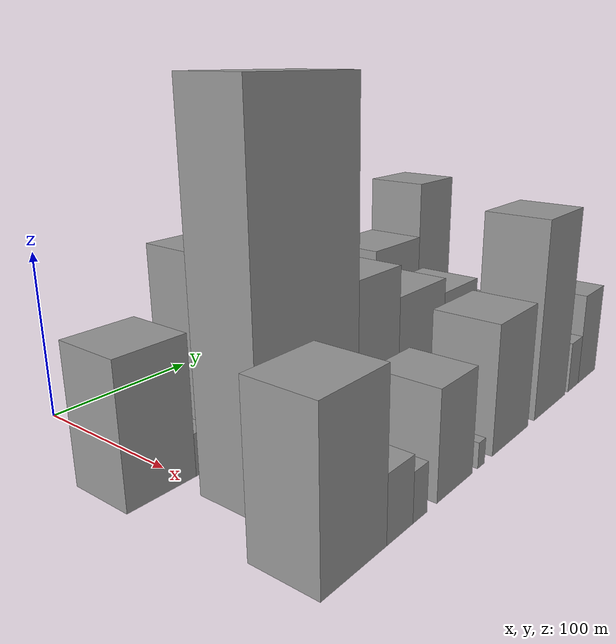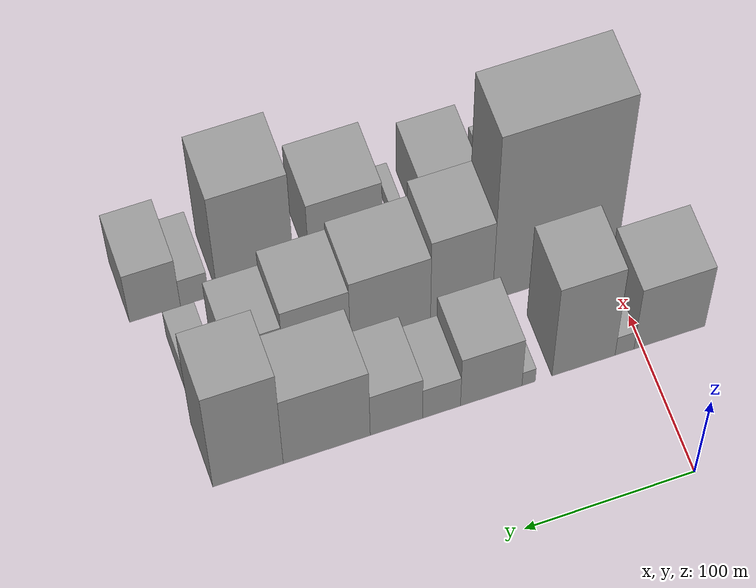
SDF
<sdf version="1.6">
 <world name="default">
  <model name="building_14">
   <static>1</static>
   <pose>100.0000 -16.3859 0 0.000000 0.000000 0.000000</pose>
   <link name="link">
    <pose>0 0 39.00 0 0 0</pose>
    <collision name="collision"><geometry><box><size>40.0000 42.8367 78.0000</size></box></geometry></collision>
    <visual name="visual">
     <cast_shadows>0</cast_shadows>
     <geometry><box><size>40.0000 42.8367 78.0000</size></box></geometry>
     <material>
      <script>
       <uri>model://grey_wall/materials/scripts</uri>
       <uri>model://grey_wall/materials/textures</uri>
       <name>vrc/grey_wall</name>
      </script>
     </material>
    </visual>
   </link>
  </model>
  <model name="building_15">
   <static>1</static>
   <pose>100.0000 10.6982 0 0.000000 0.000000 0.000000</pose>
   <link name="link">
    <pose>0 0 12.00 0 0 0</pose>
    <collision name="collision"><geometry><box><size>40.0000 11.3315 24.0000</size></box></geometry></collision>
    <visual name="visual">
     <cast_shadows>0</cast_shadows>
     <geometry><box><size>40.0000 11.3315 24.0000</size></box></geometry>
     <material>
      <script>
       <uri>model://grey_wall/materials/scripts</uri>
       <uri>model://grey_wall/materials/textures</uri>
       <name>vrc/grey_wall</name>
      </script>
     </material>
    </visual>
   </link>
  </model>
  <model name="building_16">
   <static>1</static>
   <pose>100.0000 35.2625 0 0.000000 0.000000 0.000000</pose>
   <link name="link">
    <pose>0 0 57.00 0 0 0</pose>
    <collision name="collision"><geometry><box><size>40.0000 37.7971 114.0000</size></box></geometry></collision>
    <visual name="visual">
     <cast_shadows>0</cast_shadows>
     <geometry><box><size>40.0000 37.7971 114.0000</size></box></geometry>
     <material>
      <script>
       <uri>model://grey_wall/materials/scripts</uri>
       <uri>model://grey_wall/materials/textures</uri>
       <name>vrc/grey_wall</name>
      </script>
     </material>
    </visual>
   </link>
  </model>
  <model name="building_17">
   <static>1</static>
   <pose>100.0000 68.1284 0 0.000000 0.000000 0.000000</pose>
   <link name="link">
    <pose>0 0 9.00 0 0 0</pose>
    <collision name="collision"><geometry><box><size>40.0000 7.9346 18.0000</size></box></geometry></collision>
    <visual name="visual">
     <cast_shadows>0</cast_shadows>
     <geometry><box><size>40.0000 7.9346 18.0000</size></box></geometry>
     <material>
      <script>
       <uri>model://grey_wall/materials/scripts</uri>
       <uri>model://grey_wall/materials/textures</uri>
       <name>vrc/grey_wall</name>
      </script>
     </material>
    </visual>
   </link>
  </model>
  <model name="building_18">
   <static>1</static>
   <pose>100.0000 90.3231 0 0.000000 0.000000 0.000000</pose>
   <link name="link">
    <pose>0 0 31.50 0 0 0</pose>
    <collision name="collision"><geometry><box><size>40.0000 36.4548 63.0000</size></box></geometry></collision>
    <visual name="visual">
     <cast_shadows>0</cast_shadows>
     <geometry><box><size>40.0000 36.4548 63.0000</size></box></geometry>
     <material>
      <script>
       <uri>model://grey_wall/materials/scripts</uri>
       <uri>model://grey_wall/materials/textures</uri>
       <name>vrc/grey_wall</name>
      </script>
     </material>
    </visual>
   </link>
  </model>
  <model name="building_19">
   <static>1</static>
   <pose>100.0000 119.7356 0 0.000000 0.000000 0.000000</pose>
   <link name="link">
    <pose>0 0 19.50 0 0 0</pose>
    <collision name="collision"><geometry><box><size>40.0000 22.3701 39.0000</size></box></geometry></collision>
    <visual name="visual">
     <cast_shadows>0</cast_shadows>
     <geometry><box><size>40.0000 22.3701 39.0000</size></box></geometry>
     <material>
      <script>
       <uri>model://grey_wall/materials/scripts</uri>
       <uri>model://grey_wall/materials/textures</uri>
       <name>vrc/grey_wall</name>
      </script>
     </material>
    </visual>
   </link>
  </model>
  <model name="building_20">
   <static>1</static>
   <pose>100.0000 146.3124 0 0.000000 0.000000 0.000000</pose>
   <link name="link">
    <pose>0 0 27.00 0 0 0</pose>
    <collision name="collision"><geometry><box><size>40.0000 30.7834 54.0000</size></box></geometry></collision>
    <visual name="visual">
     <cast_shadows>0</cast_shadows>
     <geometry><box><size>40.0000 30.7834 54.0000</size></box></geometry>
     <material>
      <script>
       <uri>model://grey_wall/materials/scripts</uri>
       <uri>model://grey_wall/materials/textures</uri>
       <name>vrc/grey_wall</name>
      </script>
     </material>
    </visual>
   </link>
  </model>
  <model name="building_21">
   <static>1</static>
   <pose>100.0000 187.0936 0 0.000000 0.000000 0.000000</pose>
   <link name="link">
    <pose>0 0 43.50 0 0 0</pose>
    <collision name="collision"><geometry><box><size>40.0000 50.7789 87.0000</size></box></geometry></collision>
    <visual name="visual">
     <cast_shadows>0</cast_shadows>
     <geometry><box><size>40.0000 50.7789 87.0000</size></box></geometry>
     <material>
      <script>
       <uri>model://grey_wall/materials/scripts</uri>
       <uri>model://grey_wall/materials/textures</uri>
       <name>vrc/grey_wall</name>
      </script>
     </material>
    </visual>
   </link>
  </model>
  <model name="building_22">
   <static>1</static>
   <pose>100.0000 232.9016 0 0.000000 0.000000 0.000000</pose>
   <link name="link">
    <pose>0 0 61.50 0 0 0</pose>
    <collision name="collision"><geometry><box><size>40.0000 40.8372 123.0000</size></box></geometry></collision>
    <visual name="visual">
     <cast_shadows>0</cast_shadows>
     <geometry><box><size>40.0000 40.8372 123.0000</size></box></geometry>
     <material>
      <script>
       <uri>model://grey_wall/materials/scripts</uri>
       <uri>model://grey_wall/materials/textures</uri>
       <name>vrc/grey_wall</name>
      </script>
     </material>
    </visual>
   </link>
  </model>
  <model name="building_47">
   <static>1</static>
   <pose>155.0000 31.9254 0 0.000000 0.000000 0.000000</pose>
   <link name="link">
    <pose>0 0 99.00 0 0 0</pose>
    <collision name="collision"><geometry><box><size>40.0000 75.1230 198.0000</size></box></geometry></collision>
    <visual name="visual">
     <cast_shadows>0</cast_shadows>
     <geometry><box><size>40.0000 75.1230 198.0000</size></box></geometry>
     <material>
      <script>
       <uri>model://grey_wall/materials/scripts</uri>
       <uri>model://grey_wall/materials/textures</uri>
       <name>vrc/grey_wall</name>
      </script>
     </material>
    </visual>
   </link>
  </model>
  <model name="building_48">
   <static>1</static>
   <pose>155.0000 88.0605 0 0.000000 0.000000 0.000000</pose>
   <link name="link">
    <pose>0 0 49.50 0 0 0</pose>
    <collision name="collision"><geometry><box><size>40.0000 37.1473 99.0000</size></box></geometry></collision>
    <visual name="visual">
     <cast_shadows>0</cast_shadows>
     <geometry><box><size>40.0000 37.1473 99.0000</size></box></geometry>
     <material>
      <script>
       <uri>model://grey_wall/materials/scripts</uri>
       <uri>model://grey_wall/materials/textures</uri>
       <name>vrc/grey_wall</name>
      </script>
     </material>
    </visual>
   </link>
  </model>
  <model name="building_49">
   <static>1</static>
   <pose>155.0000 130.4481 0 0.000000 0.000000 0.000000</pose>
   <link name="link">
    <pose>0 0 40.50 0 0 0</pose>
    <collision name="collision"><geometry><box><size>40.0000 47.6279 81.0000</size></box></geometry></collision>
    <visual name="visual">
     <cast_shadows>0</cast_shadows>
     <geometry><box><size>40.0000 47.6279 81.0000</size></box></geometry>
     <material>
      <script>
       <uri>model://grey_wall/materials/scripts</uri>
       <uri>model://grey_wall/materials/textures</uri>
       <name>vrc/grey_wall</name>
      </script>
     </material>
    </visual>
   </link>
  </model>
  <model name="building_50">
   <static>1</static>
   <pose>155.0000 174.0246 0 0.000000 0.000000 0.000000</pose>
   <link name="link">
    <pose>0 0 36.00 0 0 0</pose>
    <collision name="collision"><geometry><box><size>40.0000 39.5250 72.0000</size></box></geometry></collision>
    <visual name="visual">
     <cast_shadows>0</cast_shadows>
     <geometry><box><size>40.0000 39.5250 72.0000</size></box></geometry>
     <material>
      <script>
       <uri>model://grey_wall/materials/scripts</uri>
       <uri>model://grey_wall/materials/textures</uri>
       <name>vrc/grey_wall</name>
      </script>
     </material>
    </visual>
   </link>
  </model>
  <model name="building_51">
   <static>1</static>
   <pose>155.0000 209.7102 0 0.000000 0.000000 0.000000</pose>
   <link name="link">
    <pose>0 0 27.00 0 0 0</pose>
    <collision name="collision"><geometry><box><size>40.0000 31.8461 54.0000</size></box></geometry></collision>
    <visual name="visual">
     <cast_shadows>0</cast_shadows>
     <geometry><box><size>40.0000 31.8461 54.0000</size></box></geometry>
     <material>
      <script>
       <uri>model://grey_wall/materials/scripts</uri>
       <uri>model://grey_wall/materials/textures</uri>
       <name>vrc/grey_wall</name>
      </script>
     </material>
    </visual>
   </link>
  </model>
  <model name="building_52">
   <static>1</static>
   <pose>155.0000 240.8804 0 0.000000 0.000000 0.000000</pose>
   <link name="link">
    <pose>0 0 16.50 0 0 0</pose>
    <collision name="collision"><geometry><box><size>40.0000 18.4943 33.0000</size></box></geometry></collision>
    <visual name="visual">
     <cast_shadows>0</cast_shadows>
     <geometry><box><size>40.0000 18.4943 33.0000</size></box></geometry>
     <material>
      <script>
       <uri>model://grey_wall/materials/scripts</uri>
       <uri>model://grey_wall/materials/textures</uri>
       <name>vrc/grey_wall</name>
      </script>
     </material>
    </visual>
   </link>
  </model>
  <model name="building_79">
   <static>1</static>
   <pose>210.0000 -6.1846 0 0.000000 0.000000 0.000000</pose>
   <link name="link">
    <pose>0 0 43.50 0 0 0</pose>
    <collision name="collision"><geometry><box><size>40.0000 45.5531 87.0000</size></box></geometry></collision>
    <visual name="visual">
     <cast_shadows>0</cast_shadows>
     <geometry><box><size>40.0000 45.5531 87.0000</size></box></geometry>
     <material>
      <script>
       <uri>model://grey_wall/materials/scripts</uri>
       <uri>model://grey_wall/materials/textures</uri>
       <name>vrc/grey_wall</name>
      </script>
     </material>
    </visual>
   </link>
  </model>
  <model name="building_80">
   <static>1</static>
   <pose>210.0000 27.1518 0 0.000000 0.000000 0.000000</pose>
   <link name="link">
    <pose>0 0 18.00 0 0 0</pose>
    <collision name="collision"><geometry><box><size>40.0000 21.1197 36.0000</size></box></geometry></collision>
    <visual name="visual">
     <cast_shadows>0</cast_shadows>
     <geometry><box><size>40.0000 21.1197 36.0000</size></box></geometry>
     <material>
      <script>
       <uri>model://grey_wall/materials/scripts</uri>
       <uri>model://grey_wall/materials/textures</uri>
       <name>vrc/grey_wall</name>
      </script>
     </material>
    </visual>
   </link>
  </model>
  <model name="building_81">
   <static>1</static>
   <pose>210.0000 43.7896 0 0.000000 0.000000 0.000000</pose>
   <link name="link">
    <pose>0 0 13.50 0 0 0</pose>
    <collision name="collision"><geometry><box><size>40.0000 12.1557 27.0000</size></box></geometry></collision>
    <visual name="visual">
     <cast_shadows>0</cast_shadows>
     <geometry><box><size>40.0000 12.1557 27.0000</size></box></geometry>
     <material>
      <script>
       <uri>model://grey_wall/materials/scripts</uri>
       <uri>model://grey_wall/materials/textures</uri>
       <name>vrc/grey_wall</name>
      </script>
     </material>
    </visual>
   </link>
  </model>
  <model name="building_82">
   <static>1</static>
   <pose>210.0000 76.2873 0 0.000000 0.000000 0.000000</pose>
   <link name="link">
    <pose>0 0 30.00 0 0 0</pose>
    <collision name="collision"><geometry><box><size>40.0000 34.8398 60.0000</size></box></geometry></collision>
    <visual name="visual">
     <cast_shadows>0</cast_shadows>
     <geometry><box><size>40.0000 34.8398 60.0000</size></box></geometry>
     <material>
      <script>
       <uri>model://grey_wall/materials/scripts</uri>
       <uri>model://grey_wall/materials/textures</uri>
       <name>vrc/grey_wall</name>
      </script>
     </material>
    </visual>
   </link>
  </model>
  <model name="building_83">
   <static>1</static>
   <pose>210.0000 103.3612 0 0.000000 0.000000 0.000000</pose>
   <link name="link">
    <pose>0 0 7.50 0 0 0</pose>
    <collision name="collision"><geometry><box><size>40.0000 7.3080 15.0000</size></box></geometry></collision>
    <visual name="visual">
     <cast_shadows>0</cast_shadows>
     <geometry><box><size>40.0000 7.3080 15.0000</size></box></geometry>
     <material>
      <script>
       <uri>model://grey_wall/materials/scripts</uri>
       <uri>model://grey_wall/materials/textures</uri>
       <name>vrc/grey_wall</name>
      </script>
     </material>
    </visual>
   </link>
  </model>
  <model name="building_84">
   <static>1</static>
   <pose>210.0000 138.1496 0 0.000000 0.000000 0.000000</pose>
   <link name="link">
    <pose>0 0 37.50 0 0 0</pose>
    <collision name="collision"><geometry><box><size>40.0000 44.2688 75.0000</size></box></geometry></collision>
    <visual name="visual">
     <cast_shadows>0</cast_shadows>
     <geometry><box><size>40.0000 44.2688 75.0000</size></box></geometry>
     <material>
      <script>
       <uri>model://grey_wall/materials/scripts</uri>
       <uri>model://grey_wall/materials/textures</uri>
       <name>vrc/grey_wall</name>
      </script>
     </material>
    </visual>
   </link>
  </model>
  <model name="building_85">
   <static>1</static>
   <pose>210.0000 192.1983 0 0.000000 0.000000 0.000000</pose>
   <link name="link">
    <pose>0 0 60.00 0 0 0</pose>
    <collision name="collision"><geometry><box><size>40.0000 45.8285 120.0000</size></box></geometry></collision>
    <visual name="visual">
     <cast_shadows>0</cast_shadows>
     <geometry><box><size>40.0000 45.8285 120.0000</size></box></geometry>
     <material>
      <script>
       <uri>model://grey_wall/materials/scripts</uri>
       <uri>model://grey_wall/materials/textures</uri>
       <name>vrc/grey_wall</name>
      </script>
     </material>
    </visual>
   </link>
  </model>
  <model name="building_86">
   <static>1</static>
   <pose>210.0000 228.5575 0 0.000000 0.000000 0.000000</pose>
   <link name="link">
    <pose>0 0 16.50 0 0 0</pose>
    <collision name="collision"><geometry><box><size>40.0000 16.8899 33.0000</size></box></geometry></collision>
    <visual name="visual">
     <cast_shadows>0</cast_shadows>
     <geometry><box><size>40.0000 16.8899 33.0000</size></box></geometry>
     <material>
      <script>
       <uri>model://grey_wall/materials/scripts</uri>
       <uri>model://grey_wall/materials/textures</uri>
       <name>vrc/grey_wall</name>
      </script>
     </material>
    </visual>
   </link>
  </model>
  <model name="building_87">
   <static>1</static>
   <pose>210.0000 252.0326 0 0.000000 0.000000 0.000000</pose>
   <link name="link">
    <pose>0 0 30.00 0 0 0</pose>
    <collision name="collision"><geometry><box><size>40.0000 30.0604 60.0000</size></box></geometry></collision>
    <visual name="visual">
     <cast_shadows>0</cast_shadows>
     <geometry><box><size>40.0000 30.0604 60.0000</size></box></geometry>
     <material>
      <script>
       <uri>model://grey_wall/materials/scripts</uri>
       <uri>model://grey_wall/materials/textures</uri>
       <name>vrc/grey_wall</name>
      </script>
     </material>
    </visual>
   </link>
  </model>
 </world>
</sdf>
